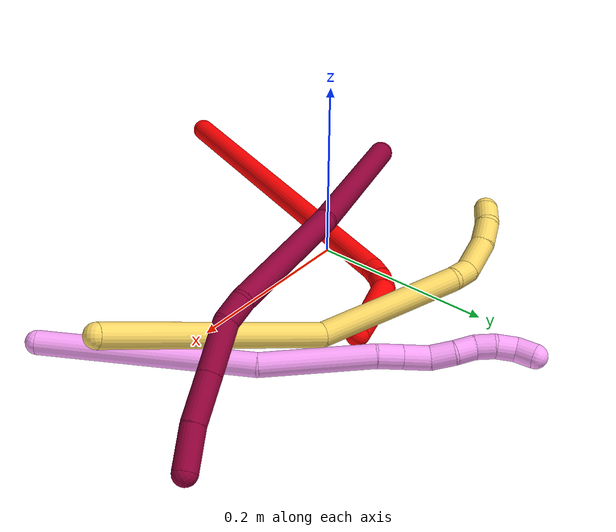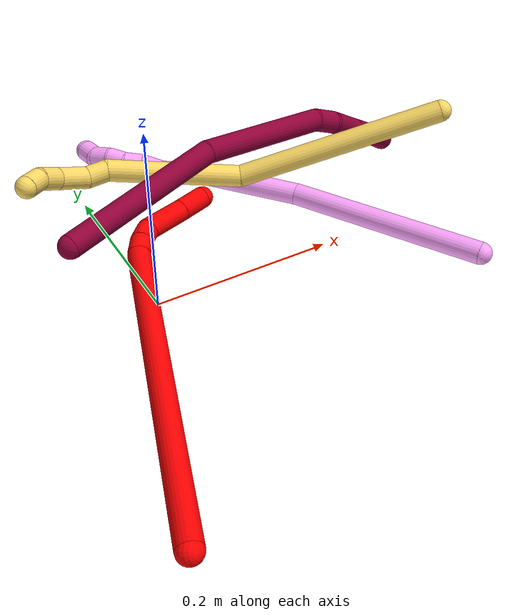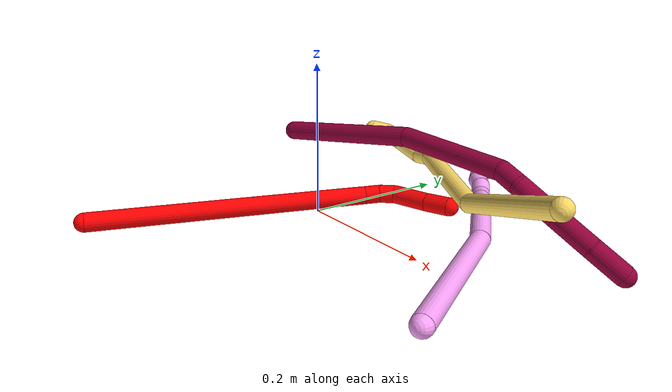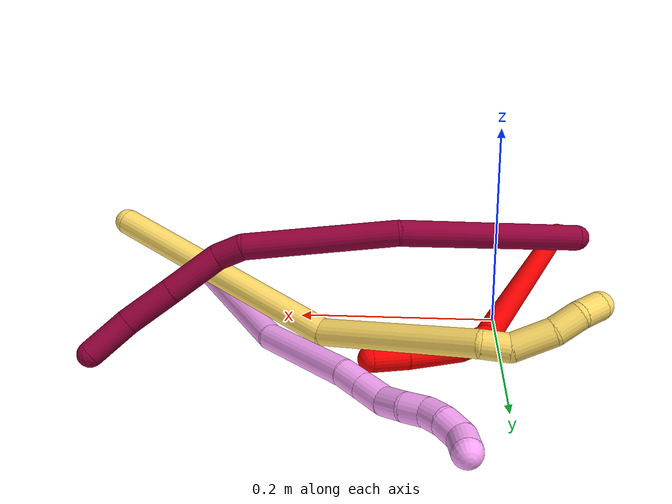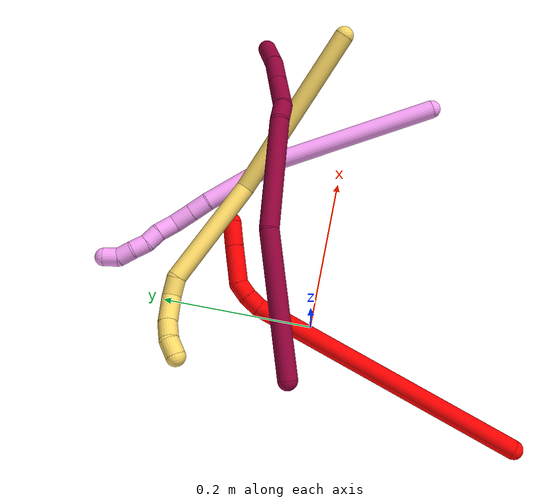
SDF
<sdf version="1.7">
 <world name="default">
  <model name="photoneo_s_sensor">
   <static>1</static>
   <pose>0 0 2 1.57079 1.57079 3.14159</pose>
   <link name="link">
    <inertial><mass>0.1</mass></inertial>
    <sensor name="sensor" type="depth">
     <update_rate>30</update_rate>
     <camera>
      <horizontal_fov>1.22</horizontal_fov>
      <image><width>1920</width><height>1200</height><format>B8G8R8</format></image>
      <clip><near>0.1</near><far>4</far></clip>
      <depth_camera><output>points</output></depth_camera>
     </camera>
     <plugin name="camera_plugin" filename="libgazebo_ros_depth_camera.so">
      <baseline>0.2</baseline>
      <alwaysOn>1</alwaysOn>
      <updateRate>0.0</updateRate>
      <cameraName>camera_ir</cameraName>
      <imageTopicName>/camera/color/image_raw</imageTopicName>
      <cameraInfoTopicName>/camera/color/camera_info</cameraInfoTopicName>
      <depthImageTopicName>/camera/depth/image_raw</depthImageTopicName>
      <depthImageCameraInfoTopicName>/camera/depth/camera_info</depthImageCameraInfoTopicName>
      <pointCloudTopicName>/camera/depth/points</pointCloudTopicName>
      <frameName>fr_optical</frameName>
      <pointCloudCutoff>0.1</pointCloudCutoff>
      <pointCloudCutoffMax>2.0</pointCloudCutoffMax>
      <distortionK1>0</distortionK1>
      <distortionK2>0</distortionK2>
      <distortionK3>0</distortionK3>
      <distortionT1>0</distortionT1>
      <distortionT2>0</distortionT2>
      <CxPrime>0</CxPrime>
      <Cx>0</Cx>
      <Cy>0</Cy>
      <focalLength>0</focalLength>
      <hackBaseline>0</hackBaseline>
     </plugin>
    </sensor>
   </link>
  </model>
  <model name="bin">
   <static>1</static>
   <link name="bottom">
    <collision name="collision-bottom">
     <pose>0 0 -0.01 0 -0 0</pose>
     <geometry><box><size>0.8 0.6 0.02</size></box></geometry>
     <surface>
      <friction><ode><mu>100</mu><mu2>100</mu2></ode></friction>
      <contact><collide_bitmask>65535</collide_bitmask></contact>
     </surface>
    </collision>
   </link>
   <link name="west_wall">
    <collision name="collision-west_wall">
     <pose>-0.41 0 0.1 0 -0 0</pose>
     <geometry><box><size>0.02 0.6 0.2</size></box></geometry>
     <surface>
      <friction><ode><mu>100</mu><mu2>100</mu2></ode></friction>
      <contact><collide_bitmask>65535</collide_bitmask></contact>
     </surface>
    </collision>
   </link>
   <link name="east_wall">
    <collision name="collision-east_wall">
     <pose>0.41 0 0.1 0 -0 0</pose>
     <geometry><box><size>0.02 0.6 0.2</size></box></geometry>
     <surface>
      <friction><ode><mu>100</mu><mu2>100</mu2></ode></friction>
      <contact><collide_bitmask>65535</collide_bitmask></contact>
     </surface>
    </collision>
   </link>
   <link name="south_wall">
    <collision name="collision-south_wall">
     <pose>0 -0.31 0.1 0 -0 0</pose>
     <geometry><box><size>0.8 0.02 0.2</size></box></geometry>
     <surface>
      <friction><ode><mu>100</mu><mu2>100</mu2></ode></friction>
      <contact><collide_bitmask>65535</collide_bitmask></contact>
     </surface>
    </collision>
   </link>
   <link name="north_wall">
    <collision name="collision-north_wall">
     <pose>0 0.31 0.1 0 -0 0</pose>
     <geometry><box><size>0.8 0.02 0.2</size></box></geometry>
     <surface>
      <friction><ode><mu>100</mu><mu2>100</mu2></ode></friction>
      <contact><collide_bitmask>65535</collide_bitmask></contact>
     </surface>
    </collision>
   </link>
  </model>
  <model name="2">
   <static>0</static>
   <link name="2">
    <collision name="collision-cylinder-e_1_1_4">
     <pose>0.112734 0.11297 -0.096123 -2.27579 0.649885 -1.25981</pose>
     <geometry><cylinder><radius>0.0125</radius><length>0.372617</length></cylinder></geometry>
     <surface>
      <friction><ode><mu>1.16</mu><mu2>1.16</mu2><slip1>0</slip1><slip2>0</slip2></ode></friction>
      <contact><ode><kp>1e+06</kp><kd>1</kd><max_vel>0</max_vel><min_depth>0.001</min_depth></ode></contact>
     </surface>
    </collision>
    <visual name="visual-cylinder-e_1_1_4">
     <pose>0.112734 0.11297 -0.096123 -2.27579 0.649885 -1.25981</pose>
     <geometry><cylinder><radius>0.0125</radius><length>0.372617</length></cylinder></geometry>
     <material><ambient>1 0 0 1</ambient></material>
    </visual>
    <collision name="collision-cylinder-e_2_4_5">
     <pose>0.233114 0.23275 -0.195257 -1.98722 0.798583 -1.14995</pose>
     <geometry><cylinder><radius>0.0125</radius><length>0.021344</length></cylinder></geometry>
     <surface>
      <friction><ode><mu>1.16</mu><mu2>1.16</mu2><slip1>0</slip1><slip2>0</slip2></ode></friction>
      <contact><ode><kp>1e+06</kp><kd>1</kd><max_vel>0</max_vel><min_depth>0.001</min_depth></ode></contact>
     </surface>
    </collision>
    <visual name="visual-cylinder-e_2_4_5">
     <pose>0.233114 0.23275 -0.195257 -1.98722 0.798583 -1.14995</pose>
     <geometry><cylinder><radius>0.0125</radius><length>0.021344</length></cylinder></geometry>
     <material><ambient>1 0 0 1</ambient></material>
    </visual>
    <collision name="collision-cylinder-e_3_5_6">
     <pose>0.249612 0.245153 -0.199879 -1.85112 0.989175 -1.24339</pose>
     <geometry><cylinder><radius>0.0125</radius><length>0.02119</length></cylinder></geometry>
     <surface>
      <friction><ode><mu>1.16</mu><mu2>1.16</mu2><slip1>0</slip1><slip2>0</slip2></ode></friction>
      <contact><ode><kp>1e+06</kp><kd>1</kd><max_vel>0</max_vel><min_depth>0.001</min_depth></ode></contact>
     </surface>
    </collision>
    <visual name="visual-cylinder-e_3_5_6">
     <pose>0.249612 0.245153 -0.199879 -1.85112 0.989175 -1.24339</pose>
     <geometry><cylinder><radius>0.0125</radius><length>0.02119</length></cylinder></geometry>
     <material><ambient>1 0 0 1</ambient></material>
    </visual>
    <collision name="collision-cylinder-e_4_6_7">
     <pose>0.282175 0.257811 -0.19513 -0.837826 1.18953 -0.585145</pose>
     <geometry><cylinder><radius>0.0125</radius><length>0.05109</length></cylinder></geometry>
     <surface>
      <friction><ode><mu>1.16</mu><mu2>1.16</mu2><slip1>0</slip1><slip2>0</slip2></ode></friction>
      <contact><ode><kp>1e+06</kp><kd>1</kd><max_vel>0</max_vel><min_depth>0.001</min_depth></ode></contact>
     </surface>
    </collision>
    <visual name="visual-cylinder-e_4_6_7">
     <pose>0.282175 0.257811 -0.19513 -0.837826 1.18953 -0.585145</pose>
     <geometry><cylinder><radius>0.0125</radius><length>0.05109</length></cylinder></geometry>
     <material><ambient>1 0 0 1</ambient></material>
    </visual>
    <collision name="collision-cylinder-e_5_7_2">
     <pose>0.321139 0.270077 -0.18375 -0.803155 1.1282 -0.524943</pose>
     <geometry><cylinder><radius>0.0125</radius><length>0.033759</length></cylinder></geometry>
     <surface>
      <friction><ode><mu>1.16</mu><mu2>1.16</mu2><slip1>0</slip1><slip2>0</slip2></ode></friction>
      <contact><ode><kp>1e+06</kp><kd>1</kd><max_vel>0</max_vel><min_depth>0.001</min_depth></ode></contact>
     </surface>
    </collision>
    <visual name="visual-cylinder-e_5_7_2">
     <pose>0.321139 0.270077 -0.18375 -0.803155 1.1282 -0.524943</pose>
     <geometry><cylinder><radius>0.0125</radius><length>0.033759</length></cylinder></geometry>
     <material><ambient>1 0 0 1</ambient></material>
    </visual>
    <collision name="collision-sphere-2">
     <pose>0.336392 0.275278 -0.17873 0 -0 0</pose>
     <geometry><sphere><radius>0.0125</radius></sphere></geometry>
     <surface>
      <friction><ode><mu>1.16</mu><mu2>1.16</mu2><slip1>0</slip1><slip2>0</slip2></ode></friction>
      <contact><ode><kp>1e+06</kp><kd>1</kd><max_vel>0</max_vel><min_depth>0.001</min_depth></ode></contact>
     </surface>
    </collision>
    <visual name="visual-sphere-2">
     <pose>0.336392 0.275278 -0.17873 0 -0 0</pose>
     <geometry><sphere><radius>0.0125</radius></sphere></geometry>
     <material><ambient>1 0 0 1</ambient></material>
    </visual>
    <collision name="collision-sphere-7">
     <pose>0.305886 0.264875 -0.188771 0 -0 0</pose>
     <geometry><sphere><radius>0.0125</radius></sphere></geometry>
     <surface>
      <friction><ode><mu>1.16</mu><mu2>1.16</mu2><slip1>0</slip1><slip2>0</slip2></ode></friction>
      <contact><ode><kp>1e+06</kp><kd>1</kd><max_vel>0</max_vel><min_depth>0.001</min_depth></ode></contact>
     </surface>
    </collision>
    <visual name="visual-sphere-7">
     <pose>0.305886 0.264875 -0.188771 0 -0 0</pose>
     <geometry><sphere><radius>0.0125</radius></sphere></geometry>
     <material><ambient>1 0 0 1</ambient></material>
    </visual>
    <collision name="collision-sphere-6">
     <pose>0.258465 0.250747 -0.20149 0 -0 0</pose>
     <geometry><sphere><radius>0.0125</radius></sphere></geometry>
     <surface>
      <friction><ode><mu>1.16</mu><mu2>1.16</mu2><slip1>0</slip1><slip2>0</slip2></ode></friction>
      <contact><ode><kp>1e+06</kp><kd>1</kd><max_vel>0</max_vel><min_depth>0.001</min_depth></ode></contact>
     </surface>
    </collision>
    <visual name="visual-sphere-6">
     <pose>0.258465 0.250747 -0.20149 0 -0 0</pose>
     <geometry><sphere><radius>0.0125</radius></sphere></geometry>
     <material><ambient>1 0 0 1</ambient></material>
    </visual>
    <collision name="collision-sphere-5">
     <pose>0.240759 0.23956 -0.198269 0 -0 0</pose>
     <geometry><sphere><radius>0.0125</radius></sphere></geometry>
     <surface>
      <friction><ode><mu>1.16</mu><mu2>1.16</mu2><slip1>0</slip1><slip2>0</slip2></ode></friction>
      <contact><ode><kp>1e+06</kp><kd>1</kd><max_vel>0</max_vel><min_depth>0.001</min_depth></ode></contact>
     </surface>
    </collision>
    <visual name="visual-sphere-5">
     <pose>0.240759 0.23956 -0.198269 0 -0 0</pose>
     <geometry><sphere><radius>0.0125</radius></sphere></geometry>
     <material><ambient>1 0 0 1</ambient></material>
    </visual>
    <collision name="collision-sphere-1">
     <geometry><sphere><radius>0.0125</radius></sphere></geometry>
     <surface>
      <friction><ode><mu>1.16</mu><mu2>1.16</mu2><slip1>0</slip1><slip2>0</slip2></ode></friction>
      <contact><ode><kp>1e+06</kp><kd>1</kd><max_vel>0</max_vel><min_depth>0.001</min_depth></ode></contact>
     </surface>
    </collision>
    <visual name="visual-sphere-1">
     <geometry><sphere><radius>0.0125</radius></sphere></geometry>
     <material><ambient>1 0 0 1</ambient></material>
    </visual>
    <collision name="collision-sphere-4">
     <pose>0.225469 0.22594 -0.192245 0 -0 0</pose>
     <geometry><sphere><radius>0.0125</radius></sphere></geometry>
     <surface>
      <friction><ode><mu>1.16</mu><mu2>1.16</mu2><slip1>0</slip1><slip2>0</slip2></ode></friction>
      <contact><ode><kp>1e+06</kp><kd>1</kd><max_vel>0</max_vel><min_depth>0.001</min_depth></ode></contact>
     </surface>
    </collision>
    <visual name="visual-sphere-4">
     <pose>0.225469 0.22594 -0.192245 0 -0 0</pose>
     <geometry><sphere><radius>0.0125</radius></sphere></geometry>
     <material><ambient>1 0 0 1</ambient></material>
    </visual>
    <inertial>
     <pose>0.155059 0.149093 -0.120785 0 -0 0</pose>
     <mass>0.5</mass>
     <inertia>
      <ixx>-0.002198</ixx>
      <ixy>0</ixy>
      <ixz>0</ixz>
      <iyy>-0.002204</iyy>
      <iyz>0</iyz>
      <izz>-0.00528</izz>
     </inertia>
    </inertial>
   </link>
   <pose>-0.105724 -0.282626 0.012535 1.03086 0.402924 0.39604</pose>
  </model>
  <model name="4">
   <static>0</static>
   <link name="4">
    <collision name="collision-cylinder-e_1_1_4">
     <pose>-0.035677 0.021278 -0.103692 -2.9392 -0.325091 2.03277</pose>
     <geometry><cylinder><radius>0.0125</radius><length>0.223407</length></cylinder></geometry>
     <surface>
      <friction><ode><mu>1.16</mu><mu2>1.16</mu2><slip1>0</slip1><slip2>0</slip2></ode></friction>
      <contact><ode><kp>1e+06</kp><kd>1</kd><max_vel>0</max_vel><min_depth>0.001</min_depth></ode></contact>
     </surface>
    </collision>
    <visual name="visual-cylinder-e_1_1_4">
     <pose>-0.035677 0.021278 -0.103692 -2.9392 -0.325091 2.03277</pose>
     <geometry><cylinder><radius>0.0125</radius><length>0.223407</length></cylinder></geometry>
     <material><ambient>1 0.65098 0.996078 1</ambient></material>
    </visual>
    <collision name="collision-cylinder-e_2_4_5">
     <pose>-0.099831 0.059516 -0.254797 -2.79806 -0.514663 1.97599</pose>
     <geometry><cylinder><radius>0.0125</radius><length>0.115698</length></cylinder></geometry>
     <surface>
      <friction><ode><mu>1.16</mu><mu2>1.16</mu2><slip1>0</slip1><slip2>0</slip2></ode></friction>
      <contact><ode><kp>1e+06</kp><kd>1</kd><max_vel>0</max_vel><min_depth>0.001</min_depth></ode></contact>
     </surface>
    </collision>
    <visual name="visual-cylinder-e_2_4_5">
     <pose>-0.099831 0.059516 -0.254797 -2.79806 -0.514663 1.97599</pose>
     <geometry><cylinder><radius>0.0125</radius><length>0.115698</length></cylinder></geometry>
     <material><ambient>1 0.65098 0.996078 1</ambient></material>
    </visual>
    <collision name="collision-cylinder-e_3_5_6">
     <pose>-0.135438 0.078401 -0.312622 -2.95878 -0.592721 2.55835</pose>
     <geometry><cylinder><radius>0.0125</radius><length>0.025533</length></cylinder></geometry>
     <surface>
      <friction><ode><mu>1.16</mu><mu2>1.16</mu2><slip1>0</slip1><slip2>0</slip2></ode></friction>
      <contact><ode><kp>1e+06</kp><kd>1</kd><max_vel>0</max_vel><min_depth>0.001</min_depth></ode></contact>
     </surface>
    </collision>
    <visual name="visual-cylinder-e_3_5_6">
     <pose>-0.135438 0.078401 -0.312622 -2.95878 -0.592721 2.55835</pose>
     <geometry><cylinder><radius>0.0125</radius><length>0.025533</length></cylinder></geometry>
     <material><ambient>1 0.65098 0.996078 1</ambient></material>
    </visual>
    <collision name="collision-cylinder-e_4_6_7">
     <pose>-0.150171 0.08244 -0.33441 -2.95786 -0.58127 2.54403</pose>
     <geometry><cylinder><radius>0.0125</radius><length>0.027687</length></cylinder></geometry>
     <surface>
      <friction><ode><mu>1.16</mu><mu2>1.16</mu2><slip1>0</slip1><slip2>0</slip2></ode></friction>
      <contact><ode><kp>1e+06</kp><kd>1</kd><max_vel>0</max_vel><min_depth>0.001</min_depth></ode></contact>
     </surface>
    </collision>
    <visual name="visual-cylinder-e_4_6_7">
     <pose>-0.150171 0.08244 -0.33441 -2.95786 -0.58127 2.54403</pose>
     <geometry><cylinder><radius>0.0125</radius><length>0.027687</length></cylinder></geometry>
     <material><ambient>1 0.65098 0.996078 1</ambient></material>
    </visual>
    <collision name="collision-cylinder-e_5_7_8">
     <pose>-0.163438 0.089976 -0.355637 -2.63844 -0.466712 1.49266</pose>
     <geometry><cylinder><radius>0.0125</radius><length>0.025186</length></cylinder></geometry>
     <surface>
      <friction><ode><mu>1.16</mu><mu2>1.16</mu2><slip1>0</slip1><slip2>0</slip2></ode></friction>
      <contact><ode><kp>1e+06</kp><kd>1</kd><max_vel>0</max_vel><min_depth>0.001</min_depth></ode></contact>
     </surface>
    </collision>
    <visual name="visual-cylinder-e_5_7_8">
     <pose>-0.163438 0.089976 -0.355637 -2.63844 -0.466712 1.49266</pose>
     <geometry><cylinder><radius>0.0125</radius><length>0.025186</length></cylinder></geometry>
     <material><ambient>1 0.65098 0.996078 1</ambient></material>
    </visual>
    <collision name="collision-cylinder-e_6_8_9">
     <pose>-0.17592 0.099502 -0.372353 -2.6028 -0.705822 1.85508</pose>
     <geometry><cylinder><radius>0.0125</radius><length>0.021013</length></cylinder></geometry>
     <surface>
      <friction><ode><mu>1.16</mu><mu2>1.16</mu2><slip1>0</slip1><slip2>0</slip2></ode></friction>
      <contact><ode><kp>1e+06</kp><kd>1</kd><max_vel>0</max_vel><min_depth>0.001</min_depth></ode></contact>
     </surface>
    </collision>
    <visual name="visual-cylinder-e_6_8_9">
     <pose>-0.17592 0.099502 -0.372353 -2.6028 -0.705822 1.85508</pose>
     <geometry><cylinder><radius>0.0125</radius><length>0.021013</length></cylinder></geometry>
     <material><ambient>1 0.65098 0.996078 1</ambient></material>
    </visual>
    <collision name="collision-cylinder-e_7_9_10">
     <pose>-0.186945 0.106593 -0.387872 -2.80918 -0.430914 1.83361</pose>
     <geometry><cylinder><radius>0.0125</radius><length>0.020157</length></cylinder></geometry>
     <surface>
      <friction><ode><mu>1.16</mu><mu2>1.16</mu2><slip1>0</slip1><slip2>0</slip2></ode></friction>
      <contact><ode><kp>1e+06</kp><kd>1</kd><max_vel>0</max_vel><min_depth>0.001</min_depth></ode></contact>
     </surface>
    </collision>
    <visual name="visual-cylinder-e_7_9_10">
     <pose>-0.186945 0.106593 -0.387872 -2.80918 -0.430914 1.83361</pose>
     <geometry><cylinder><radius>0.0125</radius><length>0.020157</length></cylinder></geometry>
     <material><ambient>1 0.65098 0.996078 1</ambient></material>
    </visual>
    <collision name="collision-cylinder-e_8_10_11">
     <pose>-0.196173 0.110329 -0.405694 -3.06019 -0.499594 2.82502</pose>
     <geometry><cylinder><radius>0.0125</radius><length>0.020953</length></cylinder></geometry>
     <surface>
      <friction><ode><mu>1.16</mu><mu2>1.16</mu2><slip1>0</slip1><slip2>0</slip2></ode></friction>
      <contact><ode><kp>1e+06</kp><kd>1</kd><max_vel>0</max_vel><min_depth>0.001</min_depth></ode></contact>
     </surface>
    </collision>
    <visual name="visual-cylinder-e_8_10_11">
     <pose>-0.196173 0.110329 -0.405694 -3.06019 -0.499594 2.82502</pose>
     <geometry><cylinder><radius>0.0125</radius><length>0.020953</length></cylinder></geometry>
     <material><ambient>1 0.65098 0.996078 1</ambient></material>
    </visual>
    <collision name="collision-cylinder-e_9_11_2">
     <pose>-0.201193 0.111541 -0.425032 -3.09597 -9.2e-05 0.004025</pose>
     <geometry><cylinder><radius>0.0125</radius><length>0.020366</length></cylinder></geometry>
     <surface>
      <friction><ode><mu>1.16</mu><mu2>1.16</mu2><slip1>0</slip1><slip2>0</slip2></ode></friction>
      <contact><ode><kp>1e+06</kp><kd>1</kd><max_vel>0</max_vel><min_depth>0.001</min_depth></ode></contact>
     </surface>
    </collision>
    <visual name="visual-cylinder-e_9_11_2">
     <pose>-0.201193 0.111541 -0.425032 -3.09597 -9.2e-05 0.004025</pose>
     <geometry><cylinder><radius>0.0125</radius><length>0.020366</length></cylinder></geometry>
     <material><ambient>1 0.65098 0.996078 1</ambient></material>
    </visual>
    <collision name="collision-sphere-2">
     <pose>-0.201194 0.112006 -0.435205 0 -0 0</pose>
     <geometry><sphere><radius>0.0125</radius></sphere></geometry>
     <surface>
      <friction><ode><mu>1.16</mu><mu2>1.16</mu2><slip1>0</slip1><slip2>0</slip2></ode></friction>
      <contact><ode><kp>1e+06</kp><kd>1</kd><max_vel>0</max_vel><min_depth>0.001</min_depth></ode></contact>
     </surface>
    </collision>
    <visual name="visual-sphere-2">
     <pose>-0.201194 0.112006 -0.435205 0 -0 0</pose>
     <geometry><sphere><radius>0.0125</radius></sphere></geometry>
     <material><ambient>1 0.65098 0.996078 1</ambient></material>
    </visual>
    <collision name="collision-sphere-11">
     <pose>-0.201192 0.111077 -0.41486 0 -0 0</pose>
     <geometry><sphere><radius>0.0125</radius></sphere></geometry>
     <surface>
      <friction><ode><mu>1.16</mu><mu2>1.16</mu2><slip1>0</slip1><slip2>0</slip2></ode></friction>
      <contact><ode><kp>1e+06</kp><kd>1</kd><max_vel>0</max_vel><min_depth>0.001</min_depth></ode></contact>
     </surface>
    </collision>
    <visual name="visual-sphere-11">
     <pose>-0.201192 0.111077 -0.41486 0 -0 0</pose>
     <geometry><sphere><radius>0.0125</radius></sphere></geometry>
     <material><ambient>1 0.65098 0.996078 1</ambient></material>
    </visual>
    <collision name="collision-sphere-10">
     <pose>-0.191154 0.109582 -0.396528 0 -0 0</pose>
     <geometry><sphere><radius>0.0125</radius></sphere></geometry>
     <surface>
      <friction><ode><mu>1.16</mu><mu2>1.16</mu2><slip1>0</slip1><slip2>0</slip2></ode></friction>
      <contact><ode><kp>1e+06</kp><kd>1</kd><max_vel>0</max_vel><min_depth>0.001</min_depth></ode></contact>
     </surface>
    </collision>
    <visual name="visual-sphere-10">
     <pose>-0.191154 0.109582 -0.396528 0 -0 0</pose>
     <geometry><sphere><radius>0.0125</radius></sphere></geometry>
     <material><ambient>1 0.65098 0.996078 1</ambient></material>
    </visual>
    <collision name="collision-sphere-9">
     <pose>-0.182735 0.103605 -0.379216 0 -0 0</pose>
     <geometry><sphere><radius>0.0125</radius></sphere></geometry>
     <surface>
      <friction><ode><mu>1.16</mu><mu2>1.16</mu2><slip1>0</slip1><slip2>0</slip2></ode></friction>
      <contact><ode><kp>1e+06</kp><kd>1</kd><max_vel>0</max_vel><min_depth>0.001</min_depth></ode></contact>
     </surface>
    </collision>
    <visual name="visual-sphere-9">
     <pose>-0.182735 0.103605 -0.379216 0 -0 0</pose>
     <geometry><sphere><radius>0.0125</radius></sphere></geometry>
     <material><ambient>1 0.65098 0.996078 1</ambient></material>
    </visual>
    <collision name="collision-sphere-4">
     <pose>-0.071355 0.042556 -0.207384 0 -0 0</pose>
     <geometry><sphere><radius>0.0125</radius></sphere></geometry>
     <surface>
      <friction><ode><mu>1.16</mu><mu2>1.16</mu2><slip1>0</slip1><slip2>0</slip2></ode></friction>
      <contact><ode><kp>1e+06</kp><kd>1</kd><max_vel>0</max_vel><min_depth>0.001</min_depth></ode></contact>
     </surface>
    </collision>
    <visual name="visual-sphere-4">
     <pose>-0.071355 0.042556 -0.207384 0 -0 0</pose>
     <geometry><sphere><radius>0.0125</radius></sphere></geometry>
     <material><ambient>1 0.65098 0.996078 1</ambient></material>
    </visual>
    <collision name="collision-sphere-1">
     <geometry><sphere><radius>0.0125</radius></sphere></geometry>
     <surface>
      <friction><ode><mu>1.16</mu><mu2>1.16</mu2><slip1>0</slip1><slip2>0</slip2></ode></friction>
      <contact><ode><kp>1e+06</kp><kd>1</kd><max_vel>0</max_vel><min_depth>0.001</min_depth></ode></contact>
     </surface>
    </collision>
    <visual name="visual-sphere-1">
     <geometry><sphere><radius>0.0125</radius></sphere></geometry>
     <material><ambient>1 0.65098 0.996078 1</ambient></material>
    </visual>
    <collision name="collision-sphere-8">
     <pose>-0.169105 0.095399 -0.36549 0 -0 0</pose>
     <geometry><sphere><radius>0.0125</radius></sphere></geometry>
     <surface>
      <friction><ode><mu>1.16</mu><mu2>1.16</mu2><slip1>0</slip1><slip2>0</slip2></ode></friction>
      <contact><ode><kp>1e+06</kp><kd>1</kd><max_vel>0</max_vel><min_depth>0.001</min_depth></ode></contact>
     </surface>
    </collision>
    <visual name="visual-sphere-8">
     <pose>-0.169105 0.095399 -0.36549 0 -0 0</pose>
     <geometry><sphere><radius>0.0125</radius></sphere></geometry>
     <material><ambient>1 0.65098 0.996078 1</ambient></material>
    </visual>
    <collision name="collision-sphere-5">
     <pose>-0.128306 0.076476 -0.30221 0 -0 0</pose>
     <geometry><sphere><radius>0.0125</radius></sphere></geometry>
     <surface>
      <friction><ode><mu>1.16</mu><mu2>1.16</mu2><slip1>0</slip1><slip2>0</slip2></ode></friction>
      <contact><ode><kp>1e+06</kp><kd>1</kd><max_vel>0</max_vel><min_depth>0.001</min_depth></ode></contact>
     </surface>
    </collision>
    <visual name="visual-sphere-5">
     <pose>-0.128306 0.076476 -0.30221 0 -0 0</pose>
     <geometry><sphere><radius>0.0125</radius></sphere></geometry>
     <material><ambient>1 0.65098 0.996078 1</ambient></material>
    </visual>
    <collision name="collision-sphere-6">
     <pose>-0.14257 0.080326 -0.323034 0 -0 0</pose>
     <geometry><sphere><radius>0.0125</radius></sphere></geometry>
     <surface>
      <friction><ode><mu>1.16</mu><mu2>1.16</mu2><slip1>0</slip1><slip2>0</slip2></ode></friction>
      <contact><ode><kp>1e+06</kp><kd>1</kd><max_vel>0</max_vel><min_depth>0.001</min_depth></ode></contact>
     </surface>
    </collision>
    <visual name="visual-sphere-6">
     <pose>-0.14257 0.080326 -0.323034 0 -0 0</pose>
     <geometry><sphere><radius>0.0125</radius></sphere></geometry>
     <material><ambient>1 0.65098 0.996078 1</ambient></material>
    </visual>
    <collision name="collision-sphere-7">
     <pose>-0.157772 0.084554 -0.345785 0 -0 0</pose>
     <geometry><sphere><radius>0.0125</radius></sphere></geometry>
     <surface>
      <friction><ode><mu>1.16</mu><mu2>1.16</mu2><slip1>0</slip1><slip2>0</slip2></ode></friction>
      <contact><ode><kp>1e+06</kp><kd>1</kd><max_vel>0</max_vel><min_depth>0.001</min_depth></ode></contact>
     </surface>
    </collision>
    <visual name="visual-sphere-7">
     <pose>-0.157772 0.084554 -0.345785 0 -0 0</pose>
     <geometry><sphere><radius>0.0125</radius></sphere></geometry>
     <material><ambient>1 0.65098 0.996078 1</ambient></material>
    </visual>
    <inertial>
     <pose>-0.093852 0.054026 -0.223285 0 -0 0</pose>
     <mass>0.5</mass>
     <inertia>
      <ixx>0.000448</ixx>
      <ixy>0</ixy>
      <ixz>0</ixz>
      <iyy>0.001458</iyy>
      <iyz>0</iyz>
      <izz>0.000117</izz>
     </inertia>
    </inertial>
   </link>
   <pose>0.329814 -0.109257 0.011497 1.48646 -0.336152 0.180403</pose>
  </model>
  <model name="5">
   <static>0</static>
   <link name="5">
    <collision name="collision-cylinder-e_1_1_4">
     <pose>-0.061224 0.061342 -0.081057 -2.49377 -0.542101 1.38281</pose>
     <geometry><cylinder><radius>0.0125</radius><length>0.23733</length></cylinder></geometry>
     <surface>
      <friction><ode><mu>1.16</mu><mu2>1.16</mu2><slip1>0</slip1><slip2>0</slip2></ode></friction>
      <contact><ode><kp>1e+06</kp><kd>1</kd><max_vel>0</max_vel><min_depth>0.001</min_depth></ode></contact>
     </surface>
    </collision>
    <visual name="visual-cylinder-e_1_1_4">
     <pose>-0.061224 0.061342 -0.081057 -2.49377 -0.542101 1.38281</pose>
     <geometry><cylinder><radius>0.0125</radius><length>0.23733</length></cylinder></geometry>
     <material><ambient>1 0.858824 0.4 1</ambient></material>
    </visual>
    <collision name="collision-cylinder-e_2_4_5">
     <pose>-0.130333 0.170737 -0.220233 -2.45072 -0.104184 0.287769</pose>
     <geometry><cylinder><radius>0.0125</radius><length>0.151646</length></cylinder></geometry>
     <surface>
      <friction><ode><mu>1.16</mu><mu2>1.16</mu2><slip1>0</slip1><slip2>0</slip2></ode></friction>
      <contact><ode><kp>1e+06</kp><kd>1</kd><max_vel>0</max_vel><min_depth>0.001</min_depth></ode></contact>
     </surface>
    </collision>
    <visual name="visual-cylinder-e_2_4_5">
     <pose>-0.130333 0.170737 -0.220233 -2.45072 -0.104184 0.287769</pose>
     <geometry><cylinder><radius>0.0125</radius><length>0.151646</length></cylinder></geometry>
     <material><ambient>1 0.858824 0.4 1</ambient></material>
    </visual>
    <collision name="collision-cylinder-e_3_5_6">
     <pose>-0.142171 0.229084 -0.284104 -2.08035 -0.32348 0.542457</pose>
     <geometry><cylinder><radius>0.0125</radius><length>0.024873</length></cylinder></geometry>
     <surface>
      <friction><ode><mu>1.16</mu><mu2>1.16</mu2><slip1>0</slip1><slip2>0</slip2></ode></friction>
      <contact><ode><kp>1e+06</kp><kd>1</kd><max_vel>0</max_vel><min_depth>0.001</min_depth></ode></contact>
     </surface>
    </collision>
    <visual name="visual-cylinder-e_3_5_6">
     <pose>-0.142171 0.229084 -0.284104 -2.08035 -0.32348 0.542457</pose>
     <geometry><cylinder><radius>0.0125</radius><length>0.024873</length></cylinder></geometry>
     <material><ambient>1 0.858824 0.4 1</ambient></material>
    </visual>
    <collision name="collision-cylinder-e_4_6_7">
     <pose>-0.143527 0.256838 -0.296206 -1.91962 0.13888 -0.197961</pose>
     <geometry><cylinder><radius>0.0125</radius><length>0.037521</length></cylinder></geometry>
     <surface>
      <friction><ode><mu>1.16</mu><mu2>1.16</mu2><slip1>0</slip1><slip2>0</slip2></ode></friction>
      <contact><ode><kp>1e+06</kp><kd>1</kd><max_vel>0</max_vel><min_depth>0.001</min_depth></ode></contact>
     </surface>
    </collision>
    <visual name="visual-cylinder-e_4_6_7">
     <pose>-0.143527 0.256838 -0.296206 -1.91962 0.13888 -0.197961</pose>
     <geometry><cylinder><radius>0.0125</radius><length>0.037521</length></cylinder></geometry>
     <material><ambient>1 0.858824 0.4 1</ambient></material>
    </visual>
    <collision name="collision-cylinder-e_5_7_8">
     <pose>-0.137391 0.286548 -0.304217 -1.70551 0.278833 -0.318538</pose>
     <geometry><cylinder><radius>0.0125</radius><length>0.025716</length></cylinder></geometry>
     <surface>
      <friction><ode><mu>1.16</mu><mu2>1.16</mu2><slip1>0</slip1><slip2>0</slip2></ode></friction>
      <contact><ode><kp>1e+06</kp><kd>1</kd><max_vel>0</max_vel><min_depth>0.001</min_depth></ode></contact>
     </surface>
    </collision>
    <visual name="visual-cylinder-e_5_7_8">
     <pose>-0.137391 0.286548 -0.304217 -1.70551 0.278833 -0.318538</pose>
     <geometry><cylinder><radius>0.0125</radius><length>0.025716</length></cylinder></geometry>
     <material><ambient>1 0.858824 0.4 1</ambient></material>
    </visual>
    <collision name="collision-cylinder-e_6_8_2">
     <pose>-0.133819 0.310128 -0.304175 -1.42164 0.002919 -0.002513</pose>
     <geometry><cylinder><radius>0.0125</radius><length>0.022914</length></cylinder></geometry>
     <surface>
      <friction><ode><mu>1.16</mu><mu2>1.16</mu2><slip1>0</slip1><slip2>0</slip2></ode></friction>
      <contact><ode><kp>1e+06</kp><kd>1</kd><max_vel>0</max_vel><min_depth>0.001</min_depth></ode></contact>
     </surface>
    </collision>
    <visual name="visual-cylinder-e_6_8_2">
     <pose>-0.133819 0.310128 -0.304175 -1.42164 0.002919 -0.002513</pose>
     <geometry><cylinder><radius>0.0125</radius><length>0.022914</length></cylinder></geometry>
     <material><ambient>1 0.858824 0.4 1</ambient></material>
    </visual>
    <collision name="collision-sphere-2">
     <pose>-0.133785 0.321457 -0.302472 0 -0 0</pose>
     <geometry><sphere><radius>0.0125</radius></sphere></geometry>
     <surface>
      <friction><ode><mu>1.16</mu><mu2>1.16</mu2><slip1>0</slip1><slip2>0</slip2></ode></friction>
      <contact><ode><kp>1e+06</kp><kd>1</kd><max_vel>0</max_vel><min_depth>0.001</min_depth></ode></contact>
     </surface>
    </collision>
    <visual name="visual-sphere-2">
     <pose>-0.133785 0.321457 -0.302472 0 -0 0</pose>
     <geometry><sphere><radius>0.0125</radius></sphere></geometry>
     <material><ambient>1 0.858824 0.4 1</ambient></material>
    </visual>
    <collision name="collision-sphere-4">
     <pose>-0.122447 0.122684 -0.162114 0 -0 0</pose>
     <geometry><sphere><radius>0.0125</radius></sphere></geometry>
     <surface>
      <friction><ode><mu>1.16</mu><mu2>1.16</mu2><slip1>0</slip1><slip2>0</slip2></ode></friction>
      <contact><ode><kp>1e+06</kp><kd>1</kd><max_vel>0</max_vel><min_depth>0.001</min_depth></ode></contact>
     </surface>
    </collision>
    <visual name="visual-sphere-4">
     <pose>-0.122447 0.122684 -0.162114 0 -0 0</pose>
     <geometry><sphere><radius>0.0125</radius></sphere></geometry>
     <material><ambient>1 0.858824 0.4 1</ambient></material>
    </visual>
    <collision name="collision-sphere-1">
     <geometry><sphere><radius>0.0125</radius></sphere></geometry>
     <surface>
      <friction><ode><mu>1.16</mu><mu2>1.16</mu2><slip1>0</slip1><slip2>0</slip2></ode></friction>
      <contact><ode><kp>1e+06</kp><kd>1</kd><max_vel>0</max_vel><min_depth>0.001</min_depth></ode></contact>
     </surface>
    </collision>
    <visual name="visual-sphere-1">
     <geometry><sphere><radius>0.0125</radius></sphere></geometry>
     <material><ambient>1 0.858824 0.4 1</ambient></material>
    </visual>
    <collision name="collision-sphere-8">
     <pose>-0.133852 0.298798 -0.305877 0 -0 0</pose>
     <geometry><sphere><radius>0.0125</radius></sphere></geometry>
     <surface>
      <friction><ode><mu>1.16</mu><mu2>1.16</mu2><slip1>0</slip1><slip2>0</slip2></ode></friction>
      <contact><ode><kp>1e+06</kp><kd>1</kd><max_vel>0</max_vel><min_depth>0.001</min_depth></ode></contact>
     </surface>
    </collision>
    <visual name="visual-sphere-8">
     <pose>-0.133852 0.298798 -0.305877 0 -0 0</pose>
     <geometry><sphere><radius>0.0125</radius></sphere></geometry>
     <material><ambient>1 0.858824 0.4 1</ambient></material>
    </visual>
    <collision name="collision-sphere-5">
     <pose>-0.138218 0.218791 -0.278352 0 -0 0</pose>
     <geometry><sphere><radius>0.0125</radius></sphere></geometry>
     <surface>
      <friction><ode><mu>1.16</mu><mu2>1.16</mu2><slip1>0</slip1><slip2>0</slip2></ode></friction>
      <contact><ode><kp>1e+06</kp><kd>1</kd><max_vel>0</max_vel><min_depth>0.001</min_depth></ode></contact>
     </surface>
    </collision>
    <visual name="visual-sphere-5">
     <pose>-0.138218 0.218791 -0.278352 0 -0 0</pose>
     <geometry><sphere><radius>0.0125</radius></sphere></geometry>
     <material><ambient>1 0.858824 0.4 1</ambient></material>
    </visual>
    <collision name="collision-sphere-6">
     <pose>-0.146124 0.239377 -0.289856 0 -0 0</pose>
     <geometry><sphere><radius>0.0125</radius></sphere></geometry>
     <surface>
      <friction><ode><mu>1.16</mu><mu2>1.16</mu2><slip1>0</slip1><slip2>0</slip2></ode></friction>
      <contact><ode><kp>1e+06</kp><kd>1</kd><max_vel>0</max_vel><min_depth>0.001</min_depth></ode></contact>
     </surface>
    </collision>
    <visual name="visual-sphere-6">
     <pose>-0.146124 0.239377 -0.289856 0 -0 0</pose>
     <geometry><sphere><radius>0.0125</radius></sphere></geometry>
     <material><ambient>1 0.858824 0.4 1</ambient></material>
    </visual>
    <collision name="collision-sphere-7">
     <pose>-0.14093 0.274299 -0.302556 0 -0 0</pose>
     <geometry><sphere><radius>0.0125</radius></sphere></geometry>
     <surface>
      <friction><ode><mu>1.16</mu><mu2>1.16</mu2><slip1>0</slip1><slip2>0</slip2></ode></friction>
      <contact><ode><kp>1e+06</kp><kd>1</kd><max_vel>0</max_vel><min_depth>0.001</min_depth></ode></contact>
     </surface>
    </collision>
    <visual name="visual-sphere-7">
     <pose>-0.14093 0.274299 -0.302556 0 -0 0</pose>
     <geometry><sphere><radius>0.0125</radius></sphere></geometry>
     <material><ambient>1 0.858824 0.4 1</ambient></material>
    </visual>
    <inertial>
     <pose>-0.099631 0.14052 -0.171216 0 -0 0</pose>
     <mass>0.5</mass>
     <inertia>
      <ixx>0.001492</ixx>
      <ixy>0</ixy>
      <ixz>0</ixz>
      <iyy>0.001014</iyy>
      <iyz>0</iyz>
      <izz>-0.000194</izz>
     </inertia>
    </inertial>
   </link>
   <pose>0.368462 0.026246 0.107069 2.27974 -1.3383 -0.236368</pose>
  </model>
  <model name="8">
   <static>0</static>
   <link name="8">
    <collision name="collision-cylinder-e_1_1_4">
     <pose>0.061247 0.036159 0.058343 -0.55482 0.728545 -0.216299</pose>
     <geometry><cylinder><radius>0.0125</radius><length>0.183984</length></cylinder></geometry>
     <surface>
      <friction><ode><mu>1.16</mu><mu2>1.16</mu2><slip1>0</slip1><slip2>0</slip2></ode></friction>
      <contact><ode><kp>1e+06</kp><kd>1</kd><max_vel>0</max_vel><min_depth>0.001</min_depth></ode></contact>
     </surface>
    </collision>
    <visual name="visual-cylinder-e_1_1_4">
     <pose>0.061247 0.036159 0.058343 -0.55482 0.728545 -0.216299</pose>
     <geometry><cylinder><radius>0.0125</radius><length>0.183984</length></cylinder></geometry>
     <material><ambient>0.584314 0 0.227451 1</ambient></material>
    </visual>
    <collision name="collision-cylinder-e_2_4_5">
     <pose>0.159279 0.092178 0.175832 -0.323959 0.532724 -0.089113</pose>
     <geometry><cylinder><radius>0.0125</radius><length>0.144855</length></cylinder></geometry>
     <surface>
      <friction><ode><mu>1.16</mu><mu2>1.16</mu2><slip1>0</slip1><slip2>0</slip2></ode></friction>
      <contact><ode><kp>1e+06</kp><kd>1</kd><max_vel>0</max_vel><min_depth>0.001</min_depth></ode></contact>
     </surface>
    </collision>
    <visual name="visual-cylinder-e_2_4_5">
     <pose>0.159279 0.092178 0.175832 -0.323959 0.532724 -0.089113</pose>
     <geometry><cylinder><radius>0.0125</radius><length>0.144855</length></cylinder></geometry>
     <material><ambient>0.584314 0 0.227451 1</ambient></material>
    </visual>
    <collision name="collision-cylinder-e_3_5_6">
     <pose>0.201513 0.111714 0.246903 0.027156 0.42847 0.005909</pose>
     <geometry><cylinder><radius>0.0125</radius><length>0.026232</length></cylinder></geometry>
     <surface>
      <friction><ode><mu>1.16</mu><mu2>1.16</mu2><slip1>0</slip1><slip2>0</slip2></ode></friction>
      <contact><ode><kp>1e+06</kp><kd>1</kd><max_vel>0</max_vel><min_depth>0.001</min_depth></ode></contact>
     </surface>
    </collision>
    <visual name="visual-cylinder-e_3_5_6">
     <pose>0.201513 0.111714 0.246903 0.027156 0.42847 0.005909</pose>
     <geometry><cylinder><radius>0.0125</radius><length>0.026232</length></cylinder></geometry>
     <material><ambient>0.584314 0 0.227451 1</ambient></material>
    </visual>
    <collision name="collision-cylinder-e_4_6_7">
     <pose>0.22278 0.104584 0.278846 0.327758 0.64234 0.109917</pose>
     <geometry><cylinder><radius>0.0125</radius><length>0.052809</length></cylinder></geometry>
     <surface>
      <friction><ode><mu>1.16</mu><mu2>1.16</mu2><slip1>0</slip1><slip2>0</slip2></ode></friction>
      <contact><ode><kp>1e+06</kp><kd>1</kd><max_vel>0</max_vel><min_depth>0.001</min_depth></ode></contact>
     </surface>
    </collision>
    <visual name="visual-cylinder-e_4_6_7">
     <pose>0.22278 0.104584 0.278846 0.327758 0.64234 0.109917</pose>
     <geometry><cylinder><radius>0.0125</radius><length>0.052809</length></cylinder></geometry>
     <material><ambient>0.584314 0 0.227451 1</ambient></material>
    </visual>
    <collision name="collision-cylinder-e_5_7_8">
     <pose>0.253077 0.09174 0.317204 0.318012 0.643361 0.10678</pose>
     <geometry><cylinder><radius>0.0125</radius><length>0.04827</length></cylinder></geometry>
     <surface>
      <friction><ode><mu>1.16</mu><mu2>1.16</mu2><slip1>0</slip1><slip2>0</slip2></ode></friction>
      <contact><ode><kp>1e+06</kp><kd>1</kd><max_vel>0</max_vel><min_depth>0.001</min_depth></ode></contact>
     </surface>
    </collision>
    <visual name="visual-cylinder-e_5_7_8">
     <pose>0.253077 0.09174 0.317204 0.318012 0.643361 0.10678</pose>
     <geometry><cylinder><radius>0.0125</radius><length>0.04827</length></cylinder></geometry>
     <material><ambient>0.584314 0 0.227451 1</ambient></material>
    </visual>
    <collision name="collision-cylinder-e_6_8_2">
     <pose>0.282146 0.078484 0.350234 0.456772 0.728119 0.17668</pose>
     <geometry><cylinder><radius>0.0125</radius><length>0.043849</length></cylinder></geometry>
     <surface>
      <friction><ode><mu>1.16</mu><mu2>1.16</mu2><slip1>0</slip1><slip2>0</slip2></ode></friction>
      <contact><ode><kp>1e+06</kp><kd>1</kd><max_vel>0</max_vel><min_depth>0.001</min_depth></ode></contact>
     </surface>
    </collision>
    <visual name="visual-cylinder-e_6_8_2">
     <pose>0.282146 0.078484 0.350234 0.456772 0.728119 0.17668</pose>
     <geometry><cylinder><radius>0.0125</radius><length>0.043849</length></cylinder></geometry>
     <material><ambient>0.584314 0 0.227451 1</ambient></material>
    </visual>
    <collision name="collision-sphere-2">
     <pose>0.296736 0.071266 0.364921 0 -0 0</pose>
     <geometry><sphere><radius>0.0125</radius></sphere></geometry>
     <surface>
      <friction><ode><mu>1.16</mu><mu2>1.16</mu2><slip1>0</slip1><slip2>0</slip2></ode></friction>
      <contact><ode><kp>1e+06</kp><kd>1</kd><max_vel>0</max_vel><min_depth>0.001</min_depth></ode></contact>
     </surface>
    </collision>
    <visual name="visual-sphere-2">
     <pose>0.296736 0.071266 0.364921 0 -0 0</pose>
     <geometry><sphere><radius>0.0125</radius></sphere></geometry>
     <material><ambient>0.584314 0 0.227451 1</ambient></material>
    </visual>
    <collision name="collision-sphere-4">
     <pose>0.122494 0.072317 0.116686 0 -0 0</pose>
     <geometry><sphere><radius>0.0125</radius></sphere></geometry>
     <surface>
      <friction><ode><mu>1.16</mu><mu2>1.16</mu2><slip1>0</slip1><slip2>0</slip2></ode></friction>
      <contact><ode><kp>1e+06</kp><kd>1</kd><max_vel>0</max_vel><min_depth>0.001</min_depth></ode></contact>
     </surface>
    </collision>
    <visual name="visual-sphere-4">
     <pose>0.122494 0.072317 0.116686 0 -0 0</pose>
     <geometry><sphere><radius>0.0125</radius></sphere></geometry>
     <material><ambient>0.584314 0 0.227451 1</ambient></material>
    </visual>
    <collision name="collision-sphere-1">
     <geometry><sphere><radius>0.0125</radius></sphere></geometry>
     <surface>
      <friction><ode><mu>1.16</mu><mu2>1.16</mu2><slip1>0</slip1><slip2>0</slip2></ode></friction>
      <contact><ode><kp>1e+06</kp><kd>1</kd><max_vel>0</max_vel><min_depth>0.001</min_depth></ode></contact>
     </surface>
    </collision>
    <visual name="visual-sphere-1">
     <geometry><sphere><radius>0.0125</radius></sphere></geometry>
     <material><ambient>0.584314 0 0.227451 1</ambient></material>
    </visual>
    <collision name="collision-sphere-8">
     <pose>0.267555 0.085702 0.335546 0 -0 0</pose>
     <geometry><sphere><radius>0.0125</radius></sphere></geometry>
     <surface>
      <friction><ode><mu>1.16</mu><mu2>1.16</mu2><slip1>0</slip1><slip2>0</slip2></ode></friction>
      <contact><ode><kp>1e+06</kp><kd>1</kd><max_vel>0</max_vel><min_depth>0.001</min_depth></ode></contact>
     </surface>
    </collision>
    <visual name="visual-sphere-8">
     <pose>0.267555 0.085702 0.335546 0 -0 0</pose>
     <geometry><sphere><radius>0.0125</radius></sphere></geometry>
     <material><ambient>0.584314 0 0.227451 1</ambient></material>
    </visual>
    <collision name="collision-sphere-5">
     <pose>0.196063 0.112038 0.234977 0 -0 0</pose>
     <geometry><sphere><radius>0.0125</radius></sphere></geometry>
     <surface>
      <friction><ode><mu>1.16</mu><mu2>1.16</mu2><slip1>0</slip1><slip2>0</slip2></ode></friction>
      <contact><ode><kp>1e+06</kp><kd>1</kd><max_vel>0</max_vel><min_depth>0.001</min_depth></ode></contact>
     </surface>
    </collision>
    <visual name="visual-sphere-5">
     <pose>0.196063 0.112038 0.234977 0 -0 0</pose>
     <geometry><sphere><radius>0.0125</radius></sphere></geometry>
     <material><ambient>0.584314 0 0.227451 1</ambient></material>
    </visual>
    <collision name="collision-sphere-6">
     <pose>0.206962 0.11139 0.258829 0 -0 0</pose>
     <geometry><sphere><radius>0.0125</radius></sphere></geometry>
     <surface>
      <friction><ode><mu>1.16</mu><mu2>1.16</mu2><slip1>0</slip1><slip2>0</slip2></ode></friction>
      <contact><ode><kp>1e+06</kp><kd>1</kd><max_vel>0</max_vel><min_depth>0.001</min_depth></ode></contact>
     </surface>
    </collision>
    <visual name="visual-sphere-6">
     <pose>0.206962 0.11139 0.258829 0 -0 0</pose>
     <geometry><sphere><radius>0.0125</radius></sphere></geometry>
     <material><ambient>0.584314 0 0.227451 1</ambient></material>
    </visual>
    <collision name="collision-sphere-7">
     <pose>0.238599 0.097778 0.298862 0 -0 0</pose>
     <geometry><sphere><radius>0.0125</radius></sphere></geometry>
     <surface>
      <friction><ode><mu>1.16</mu><mu2>1.16</mu2><slip1>0</slip1><slip2>0</slip2></ode></friction>
      <contact><ode><kp>1e+06</kp><kd>1</kd><max_vel>0</max_vel><min_depth>0.001</min_depth></ode></contact>
     </surface>
    </collision>
    <visual name="visual-sphere-7">
     <pose>0.238599 0.097778 0.298862 0 -0 0</pose>
     <geometry><sphere><radius>0.0125</radius></sphere></geometry>
     <material><ambient>0.584314 0 0.227451 1</ambient></material>
    </visual>
    <inertial>
     <pose>0.151959 0.072657 0.176151 0 -0 0</pose>
     <mass>0.5</mass>
     <inertia>
      <ixx>0.000557</ixx>
      <ixy>0</ixy>
      <ixz>0</ixz>
      <iyy>0.000665</iyy>
      <iyz>0</iyz>
      <izz>-0.000744</izz>
     </inertia>
    </inertial>
   </link>
   <pose>-0.077024 0.013265 0.095351 1.97437 0.019535 1.15012</pose>
  </model>
 </world>
</sdf>
